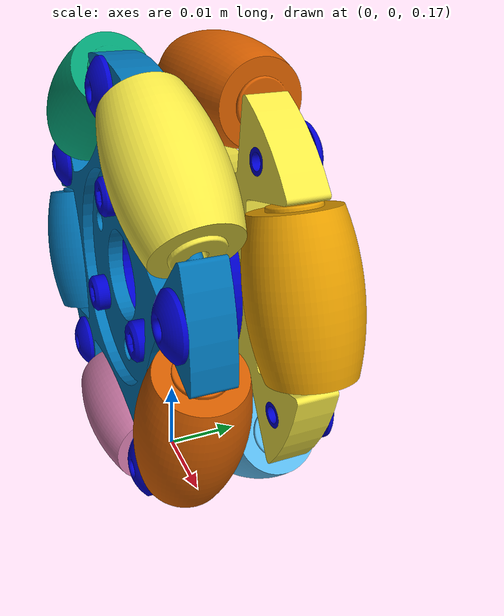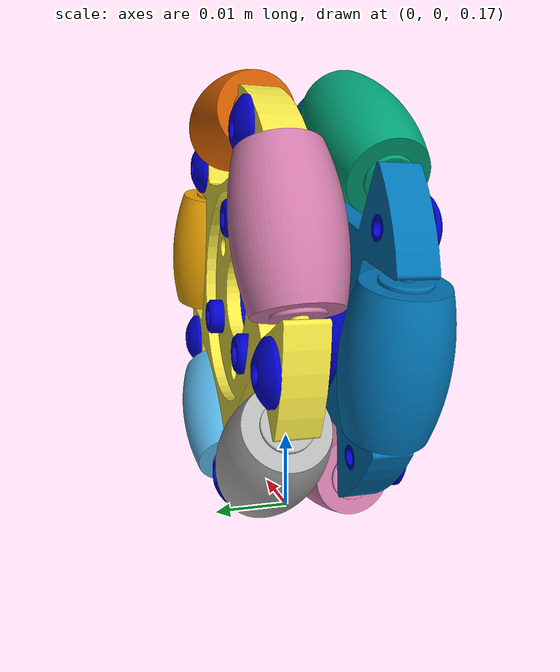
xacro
<?xml version="1.0"?>

 <robot name="mars" xmlns:xacro="http://ros.org/wiki/xacro">

<xacro:include filename="$(find my_mars_description)/urdf/materials.xacro" />

<xacro:include filename="$(find my_mars_description)/urdf/mars_wheel_macro.urdf.xacro" />

  <link name="world"/>

  <!-- World fixed joint-->
  <joint name="world_fixed0" type="fixed">
    <origin xyz="0 0 0.2" rpy="0 0 0"/>
    <parent link="world"/>
    <child link="empty_wheel_0_0"/>
  </joint>

  <xacro:wheel wheel_num="0" modul_num="0"/>-->

</robot>

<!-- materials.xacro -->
<robot xmlns:xacro="http://www.ros.org/wiki/xacro">
    <material name="red">
        <color rgba="0.8 0 0 1"/>
    </material>

    <material name="green">
        <color rgba="0 0.8 0 1"/>
    </material>

    <material name="blue">
        <color rgba="0 0 0.8 1"/>
    </material>

    <material name="white">
        <color rgba="1 1 1 1" />
    </material>

    <material name="black">
        <color rgba="0 0 0 1" />
    </material>

</robot>

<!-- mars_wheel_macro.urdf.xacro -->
<robot name="wheel" xmlns:xacro="http://ros.org/wiki/xacro">

  <xacro:include filename="$(find my_mars_description)/urdf/inert.xacro" />

    <xacro:macro name="empty_link" params="name">
      <link name="${name}">
        <visual>
          <geometry>
            <sphere radius="0.005"/>
          </geometry>
          <material name="black" />
        </visual>
        <xacro:empty_inertial />
      </link>
    </xacro:macro>

<xacro:macro name="wheel" params="wheel_num modul_num">

  <xacro:empty_link name="empty_wheel_${wheel_num}_${modul_num}"/>

  <joint name="wheel_continuous_${wheel_num}_${modul_num}" type="fixed">
    <origin xyz="0 0 0" rpy="0 0 0"/>
    <axis xyz="0 1 0" />
    <parent link="empty_wheel_${wheel_num}_${modul_num}"/>
    <child link="base_wheel_link_${wheel_num}_${modul_num}"/>
  </joint>
  <xacro:SimpleTransmissionVel joint="wheel_continuous_${wheel_num}_${modul_num}"/>

  <link name="base_wheel_link_${wheel_num}_${modul_num}">
    <xacro:empty_inertial />
    <collision>
      <origin xyz="0.043 0.0945 -0.152" rpy="0 -${pi/4} ${pi/2}"/>
      <geometry>
        <mesh filename="package://my_mars_description/meshes/wheel_dops.stl" scale="0.001 0.001 0.001"/>
      </geometry>
      <material name="blue" />
    </collision>
    <visual>
      <origin xyz="0.043 0.0945 -0.152" rpy="0 -${pi/4} ${pi/2}"/>
      <geometry>
        <mesh filename="package://my_mars_description/meshes/wheel_dops.stl" scale="0.001 0.001 0.001"/>
      </geometry>
      <material name="blue" />
    </visual>
  </link>

  <joint name="wheel_out_joint_${wheel_num}_${modul_num}" type="fixed">
    <origin xyz="0 0 0" rpy="0 0 0"/>
    <parent link="base_wheel_link_${wheel_num}_${modul_num}"/>
    <child link="wheel_out_${wheel_num}_${modul_num}"/>
  </joint>

  <joint name="wheel_in_joint_${wheel_num}_${modul_num}" type="fixed">
    <origin xyz="0 0 0" rpy="0 0 0"/>
    <parent link="base_wheel_link_${wheel_num}_${modul_num}"/>
    <child link="wheel_in_${wheel_num}_${modul_num}"/>
  </joint>

  <link name="wheel_in_${wheel_num}_${modul_num}">
    <xacro:empty_inertial />
    <collision>
      <origin xyz="0.043 0.0945 -0.152" rpy="0 -${pi/4} ${pi/2}"/>
      <geometry>
        <mesh filename="package://my_mars_description/meshes/wheel_out1.stl" scale="0.001 0.001 0.001"/>
      </geometry>
    </collision>
    <visual>
      <origin xyz="0.043 0.0945 -0.152" rpy="0 -${pi/4} ${pi/2}"/>
      <geometry>
        <mesh filename="package://my_mars_description/meshes/wheel_out1.stl" scale="0.001 0.001 0.001"/>
      </geometry>
    </visual>
  </link>

  <link name="wheel_out_${wheel_num}_${modul_num}">
    <xacro:empty_inertial />
  <collision>
    <origin xyz="0.043 0.0945 -0.152" rpy="0 -${pi/4} ${pi/2}"/>
      <geometry>
        <mesh filename="package://my_mars_description/meshes/wheel_out2.stl" scale="0.001 0.001 0.001"/>
      </geometry>
    </collision>
  <visual>
    <origin xyz="0.043 0.0945 -0.152" rpy="0 -${pi/4} ${pi/2}"/>
      <geometry>
        <mesh filename="package://my_mars_description/meshes/wheel_out2.stl" scale="0.001 0.001 0.001"/>
      </geometry>
    </visual>
  </link>

  <joint name="rubberwheel_joint_1_${wheel_num}_${modul_num}" type="fixed">
    <origin xyz="0.000 0.006 0.023" rpy="0 0 0"/>
    <axis xyz="1 0 0" />

    <parent link="base_wheel_link_${wheel_num}_${modul_num}"/>
    <child link="rubberwheel_1_${wheel_num}_${modul_num}"/>
  </joint>

  <link name="rubberwheel_1_${wheel_num}_${modul_num}">
    <xacro:empty_inertial />
  <collision>
    <origin xyz="-0.122 -0.1206 -0.0885" rpy="0 ${pi/4} ${pi/8}"/>
      <geometry>
        <mesh filename="package://my_mars_description/meshes/rubberWheel.stl" scale="0.001 0.001 0.001"/>
      </geometry>
    </collision>
    <visual>
    <origin xyz="-0.122 -0.1206 -0.0885" rpy="0 ${pi/4} ${pi/8}"/>
      <geometry>
        <mesh filename="package://my_mars_description/meshes/rubberWheel.stl" scale="0.001 0.001 0.001"/>
      </geometry>
    </visual>
  </link>

    <joint name="rubberwheel_joint_2_${wheel_num}_${modul_num}" type="fixed">
    <origin xyz="-0.02187429987 0.006 0.00710739087" rpy="0 -${2*pi/5} 0"/>
    <axis xyz="1 0 0" />

    <parent link="base_wheel_link_${wheel_num}_${modul_num}"/>
    <child link="rubberwheel_2_${wheel_num}_${modul_num}"/>
  </joint>

  <link name="rubberwheel_2_${wheel_num}_${modul_num}">
    <xacro:empty_inertial />
  <collision>
    <origin xyz="-0.122 -0.1206 -0.0885" rpy="0 ${pi/4} ${pi/8}"/>
      <geometry>
        <mesh filename="package://my_mars_description/meshes/rubberWheel.stl" scale="0.001 0.001 0.001"/>
      </geometry>
    </collision>
    <visual>
    <origin xyz="-0.122 -0.1206 -0.0885" rpy="0 ${pi/4} ${pi/8}"/>
      <geometry>
        <mesh filename="package://my_mars_description/meshes/rubberWheel.stl" scale="0.001 0.001 0.001"/>
      </geometry>
    </visual>
  </link>

  <joint name="rubberwheel_joint_3_${wheel_num}_${modul_num}" type="fixed">
    <origin xyz="-0.0135190608 0.006 -0.0186073908" rpy="0 -${4*pi/5} 0"/>
    <axis xyz="1 0 0" />

    <parent link="base_wheel_link_${wheel_num}_${modul_num}"/>
    <child link="rubberwheel_3_${wheel_num}_${modul_num}"/>
  </joint>

  <link name="rubberwheel_3_${wheel_num}_${modul_num}">
    <xacro:empty_inertial />
  <collision>
    <origin xyz="-0.122 -0.1206 -0.0885" rpy="0 ${pi/4} ${pi/8}"/>
      <geometry>
        <mesh filename="package://my_mars_description/meshes/rubberWheel.stl" scale="0.001 0.001 0.001"/>
      </geometry>
  </collision>
  <visual>
    <origin xyz="-0.122 -0.1206 -0.0885" rpy="0 ${pi/4} ${pi/8}"/>
      <geometry>
        <mesh filename="package://my_mars_description/meshes/rubberWheel.stl" scale="0.001 0.001 0.001"/>
      </geometry>
    </visual>
  </link>
  <joint name="rubberwheel_joint_4_${wheel_num}_${modul_num}" type="fixed">
    <origin xyz="0.02187429987 0.006 0.00710739087" rpy="0 ${2*pi/5} 0"/>
    <axis xyz="1 0 0" />

    <parent link="base_wheel_link_${wheel_num}_${modul_num}"/>
    <child link="rubberwheel_4_${wheel_num}_${modul_num}"/>
  </joint>

  <link name="rubberwheel_4_${wheel_num}_${modul_num}">
    <xacro:empty_inertial />
  <collision>
    <origin xyz="-0.122 -0.1206 -0.0885" rpy="0 ${pi/4} ${pi/8}"/>
      <geometry>
        <mesh filename="package://my_mars_description/meshes/rubberWheel.stl" scale="0.001 0.001 0.001"/>
      </geometry>
    </collision>
      <visual>
    <origin xyz="-0.122 -0.1206 -0.0885" rpy="0 ${pi/4} ${pi/8}"/>
      <geometry>
        <mesh filename="package://my_mars_description/meshes/rubberWheel.stl" scale="0.001 0.001 0.001"/>
      </geometry>
    </visual>
  </link>
  <joint name="rubberwheel_joint_5_${wheel_num}_${modul_num}" type="fixed">
    <origin xyz="0.0135190608 0.006 -0.0186073908" rpy="0 ${4*pi/5} 0"/>
    <axis xyz="1 0 0" />

    <parent link="base_wheel_link_${wheel_num}_${modul_num}"/>
    <child link="rubberwheel_5_${wheel_num}_${modul_num}"/>
  </joint>

  <link name="rubberwheel_5_${wheel_num}_${modul_num}">
    <xacro:empty_inertial />
  <collision>
    <origin xyz="-0.122 -0.1206 -0.0885" rpy="0 ${pi/4} ${pi/8}"/>
      <geometry>
        <mesh filename="package://my_mars_description/meshes/rubberWheel.stl" scale="0.001 0.001 0.001"/>
      </geometry>
    </collision>
      <visual>
    <origin xyz="-0.122 -0.1206 -0.0885" rpy="0 ${pi/4} ${pi/8}"/>
      <geometry>
        <mesh filename="package://my_mars_description/meshes/rubberWheel.stl" scale="0.001 0.001 0.001"/>
      </geometry>
    </visual>
  </link>
  <joint name="rubberwheel_joint_6_${wheel_num}_${modul_num}" type="fixed">
    <origin xyz="-0.0135190608 -0.006 0.01860739087" rpy="0 -${pi/5} 0"/>
    <axis xyz="1 0 0" />

    <parent link="base_wheel_link_${wheel_num}_${modul_num}"/>
    <child link="rubberwheel_6_${wheel_num}_${modul_num}"/>
  </joint>

  <link name="rubberwheel_6_${wheel_num}_${modul_num}">
    <xacro:empty_inertial />
  <collision>
    <origin xyz="-0.122 -0.1206 -0.0885" rpy="0 ${pi/4} ${pi/8}"/>
      <geometry>
        <mesh filename="package://my_mars_description/meshes/rubberWheel.stl" scale="0.001 0.001 0.001"/>
      </geometry>
    </collision>
      <visual>
    <origin xyz="-0.122 -0.1206 -0.0885" rpy="0 ${pi/4} ${pi/8}"/>
      <geometry>
        <mesh filename="package://my_mars_description/meshes/rubberWheel.stl" scale="0.001 0.001 0.001"/>
      </geometry>
    </visual>
  </link>
  <joint name="rubberwheel_joint_7_${wheel_num}_${modul_num}" type="fixed">
    <origin xyz="0.0135190608 -0.006 0.01860739087" rpy="0 ${pi/5} 0"/>
    <axis xyz="1 0 0" />

    <parent link="base_wheel_link_${wheel_num}_${modul_num}"/>
    <child link="rubberwheel_7_${wheel_num}_${modul_num}"/>
  </joint>

  <link name="rubberwheel_7_${wheel_num}_${modul_num}">
    <xacro:empty_inertial />
  <collision>
    <origin xyz="-0.122 -0.1206 -0.0885" rpy="0 ${pi/4} ${pi/8}"/>
      <geometry>
        <mesh filename="package://my_mars_description/meshes/rubberWheel.stl" scale="0.001 0.001 0.001"/>
      </geometry>
    </collision>
      <visual>
    <origin xyz="-0.122 -0.1206 -0.0885" rpy="0 ${pi/4} ${pi/8}"/>
      <geometry>
        <mesh filename="package://my_mars_description/meshes/rubberWheel.stl" scale="0.001 0.001 0.001"/>
      </geometry>
    </visual>
  </link>
  <joint name="rubberwheel_joint_8_${wheel_num}_${modul_num}" type="fixed">
    <origin xyz="-0.02187429987 -0.006 -0.00710739087" rpy="0 -${3*pi/5} 0"/>
    <axis xyz="1 0 0" />

    <parent link="base_wheel_link_${wheel_num}_${modul_num}"/>
    <child link="rubberwheel_8_${wheel_num}_${modul_num}"/>
  </joint>

  <link name="rubberwheel_8_${wheel_num}_${modul_num}">
    <xacro:empty_inertial />
  <collision>
    <origin xyz="-0.122 -0.1206 -0.0885" rpy="0 ${pi/4} ${pi/8}"/>
      <geometry>
        <mesh filename="package://my_mars_description/meshes/rubberWheel.stl" scale="0.001 0.001 0.001"/>
      </geometry>
    </collision>
      <visual>
    <origin xyz="-0.122 -0.1206 -0.0885" rpy="0 ${pi/4} ${pi/8}"/>
      <geometry>
        <mesh filename="package://my_mars_description/meshes/rubberWheel.stl" scale="0.001 0.001 0.001"/>
      </geometry>
    </visual>
  </link>
  <joint name="rubberwheel_joint_9_${wheel_num}_${modul_num}" type="fixed">
    <origin xyz="0.02187429987 -0.006 -0.00710739087" rpy="0 ${3*pi/5} 0"/>
    <axis xyz="1 0 0" />

    <parent link="base_wheel_link_${wheel_num}_${modul_num}"/>
    <child link="rubberwheel_9_${wheel_num}_${modul_num}"/>
  </joint>

  <link name="rubberwheel_9_${wheel_num}_${modul_num}">
    <xacro:empty_inertial />
  <collision>
    <origin xyz="-0.122 -0.1206 -0.0885" rpy="0 ${pi/4} ${pi/8}"/>
      <geometry>
        <mesh filename="package://my_mars_description/meshes/rubberWheel.stl" scale="0.001 0.001 0.001"/>
      </geometry>
    </collision>
      <visual>
    <origin xyz="-0.122 -0.1206 -0.0885" rpy="0 ${pi/4} ${pi/8}"/>
      <geometry>
        <mesh filename="package://my_mars_description/meshes/rubberWheel.stl" scale="0.001 0.001 0.001"/>
      </geometry>
    </visual>
  </link>

  <joint name="rubberwheel_joint_10_${wheel_num}_${modul_num}" type="fixed">
    <origin xyz="-0.0025 -0.006 -0.023" rpy="0 0 0"/>
    <axis xyz="1 0 0" />

    <parent link="base_wheel_link_${wheel_num}_${modul_num}"/>
    <child link="rubberwheel_10_${wheel_num}_${modul_num}"/>
  </joint>

  <link name="rubberwheel_10_${wheel_num}_${modul_num}">
    <xacro:empty_inertial />
  <collision>
    <origin xyz="-0.122 -0.1206 -0.0885" rpy="0 ${pi/4} ${pi/8}"/>
      <geometry>
        <mesh filename="package://my_mars_description/meshes/rubberWheel.stl" scale="0.001 0.001 0.001"/>
      </geometry>
    </collision>
    <visual>
    <origin xyz="-0.122 -0.1206 -0.0885" rpy="0 ${pi/4} ${pi/8}"/>
      <geometry>
        <mesh filename="package://my_mars_description/meshes/rubberWheel.stl" scale="0.001 0.001 0.001"/>
      </geometry>
    </visual>
  </link>

</xacro:macro>

</robot>

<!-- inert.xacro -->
<robot xmlns:xacro="http://www.ros.org/wiki/xacro">
    <xacro:macro name="empty_inertial" params="">
        <inertial>
            <mass value="0.0001" />
            <inertia
                    ixx="0.0001" ixy="0.0" ixz="0.0"
                    iyy="0.0001" iyz="0.0"
                    izz="0.0001" />
        </inertial>
    </xacro:macro>

    <xacro:macro name="empty_gazebo_link" params="">
        <visual>
            <geometry>
                <sphere radius="0.005"/>
            </geometry>
            <material name="red" />
        </visual>
        <xacro:empty_inertial />
    </xacro:macro>

    <xacro:macro name="cylinder_inertial" params="r l m">
        <inertial>
            <mass value="${m}" />
            <inertia
                    ixx="${(1.0/12.0)*m*(3.0*r*r + l*l)}" ixy="0.0" ixz="0.0"
                    iyy="${(1.0/12.0)*m*(3.0*r*r + l*l)}" iyz="0.0"
                    izz="${(1.0/2.0)*m*r*r}" />
        </inertial>
    </xacro:macro>

    <xacro:macro name="box_inertial" params="w h d m">
        <inertial>
            <mass value="${m}" />
            <inertia
                    ixx="${(1.0/12.0)*m*(h*h + d*d)}" ixy="0.0" ixz="0.0"
                    iyy="${(1.0/12.0)*m*(w*w + d*d)}" iyz="0.0"
                    izz="${(1.0/12.0)*m*(w*w + h*h)}" />
        </inertial>
    </xacro:macro>

</robot>
